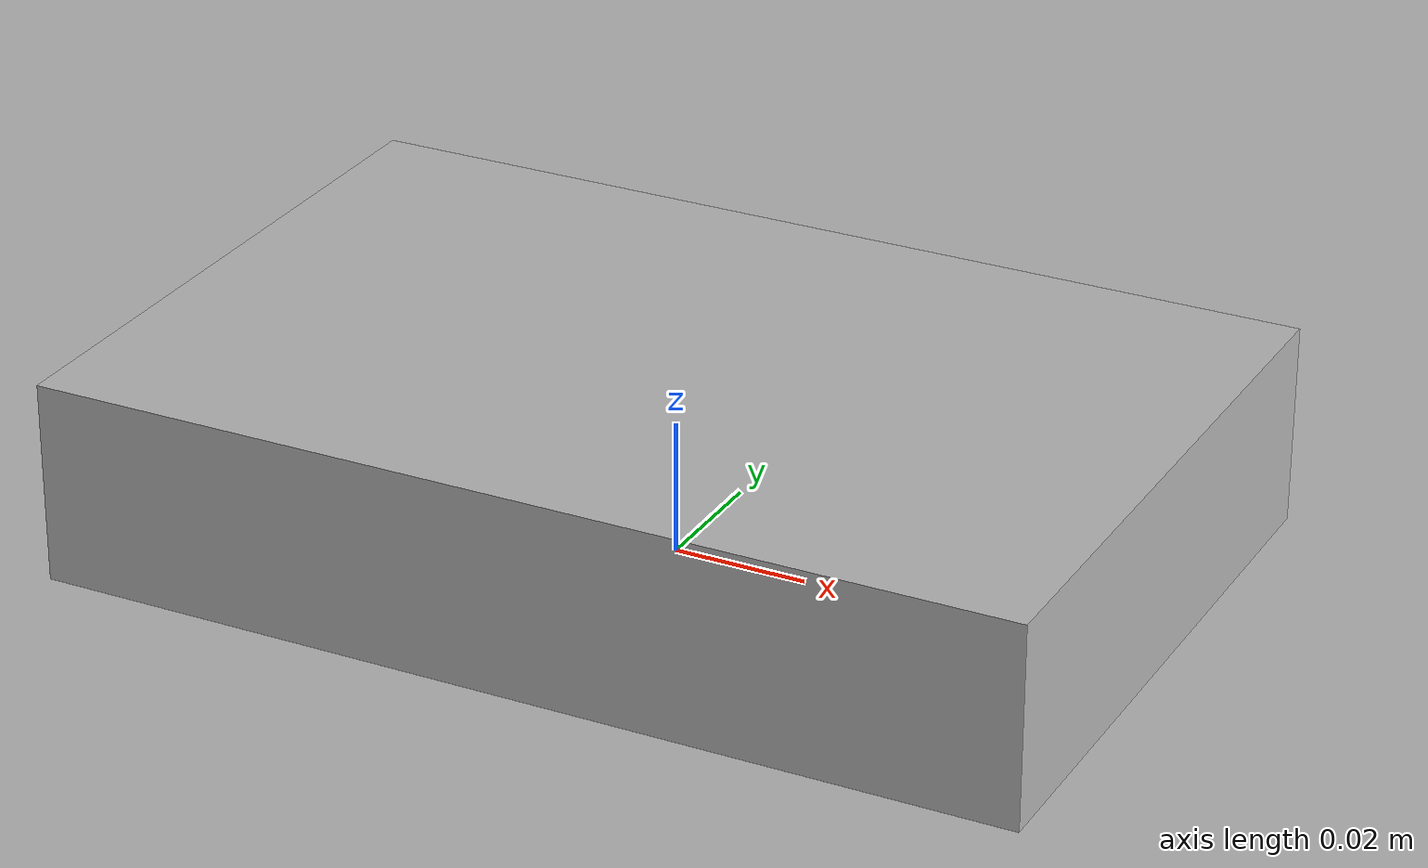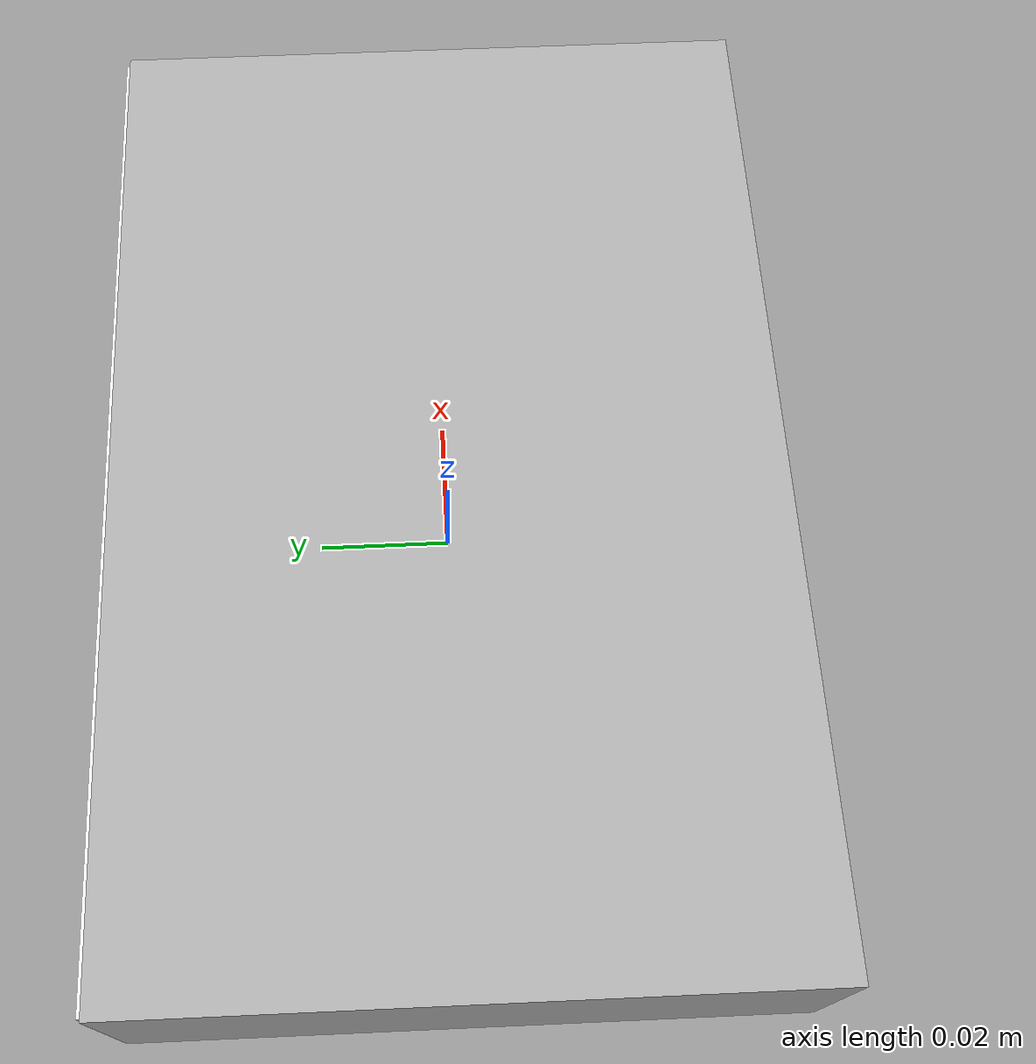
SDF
<?xml version='1.0'?>
<sdf version='1.6'>
  <model name='book_1'>
    <link name='cover'>
      <pose frame=''>0 -0.000108 0.015405 0 -0 0</pose>
      <self_collide>0</self_collide>
      <kinematic>0</kinematic>
      <gravity>1</gravity>
      <visual name='visual'>
        <geometry>
          <box>
            <size>0.147 0.096 0.03</size>
          </box>
        </geometry>
	<material>
          <script>
            <uri>model://book_1/materials/scripts</uri>
            <uri>model://book_1/materials/textures</uri>
            <name>book_1</name>
          </script>
        </material>
        <cast_shadows>1</cast_shadows>
        <transparency>0</transparency>
      </visual>
      <collision name='collision'>
        <laser_retro>0</laser_retro>
        <max_contacts>10</max_contacts>
          <geometry>
          <box>
            <size>0.147 0.096 0.03</size>
          </box>
        </geometry>
       </collision>
    </link>
    <link name='page'>
      <pose frame=''>0 0.000608 0.015405 0 -0 0</pose>
       <visual name='visual'>
        <pose frame=''>0 0 0 0 -0 0</pose>
        <geometry>
          <box>
            <size>0.146 0.0959 0.028</size>
          </box>
        </geometry>
        <material>
          <lighting>1</lighting>
           <ambient>1 1 1 1</ambient>
          <diffuse>1 1 1 1</diffuse>
          <specular>0.01 0.01 0.01 1</specular>
          <emissive>0 0 0 1</emissive>
          <shader type='vertex'>
            <normal_map>__default__</normal_map>
          </shader>
        </material>
        <cast_shadows>1</cast_shadows>
        <transparency>0</transparency>
      </visual>
      <collision name='collision'>
        <laser_retro>0</laser_retro>
        <max_contacts>10</max_contacts>
        <pose frame=''>0 0 0 0 -0 0</pose>
        <geometry>
          <box>
            <size>0.146 0.0959 0.028</size>
          </box>
        </geometry>
      </collision>
    </link>
    <static>0</static>
    <allow_auto_disable>1</allow_auto_disable>
  </model>
</sdf>
